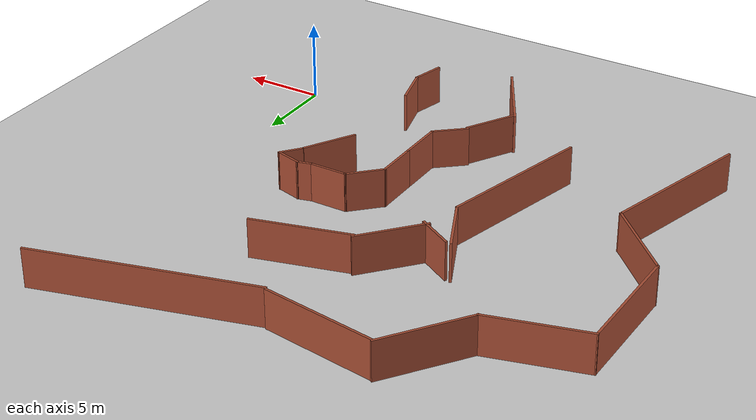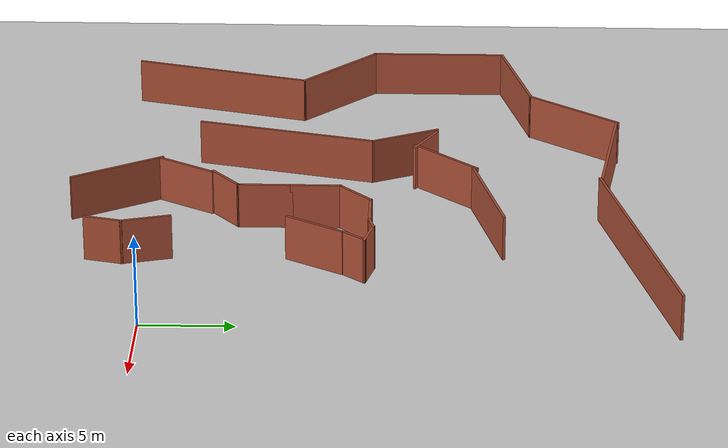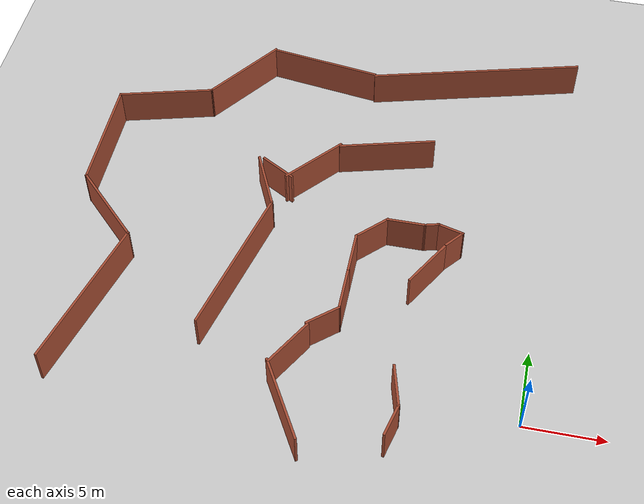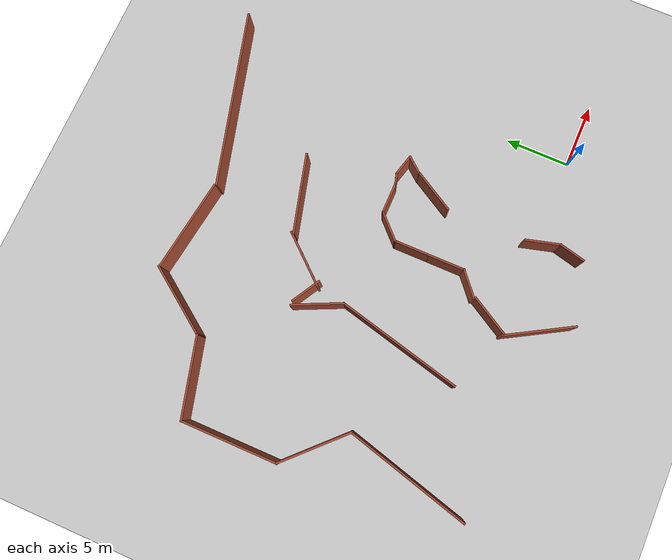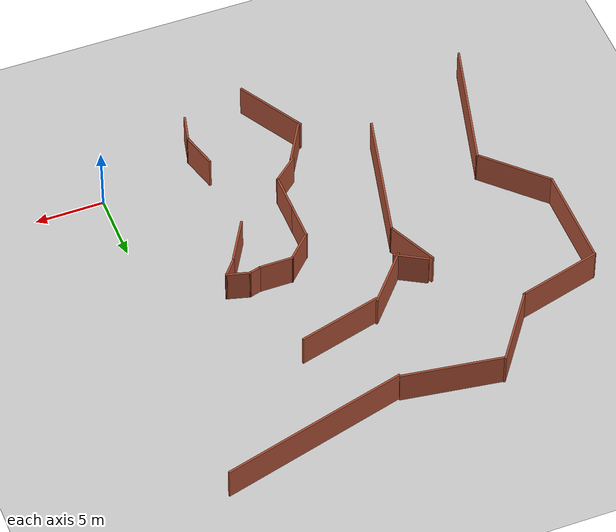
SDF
<sdf version="1.5">
 <world name="default">
  <model name="ground_plane">
   <static>1</static>
   <link name="link">
    <collision name="collision">
     <geometry><plane><normal>0 0 1</normal><size>100 100</size></plane></geometry>
     <surface><friction><ode><mu>100</mu><mu2>50</mu2></ode></friction></surface>
    </collision>
    <visual name="visual">
     <cast_shadows>0</cast_shadows>
     <geometry><plane><normal>0 0 1</normal><size>100 100</size></plane></geometry>
     <material>
      <script><uri>file://media/materials/scripts/gazebo.material</uri><name>Gazebo/Grey</name></script>
     </material>
    </visual>
   </link>
  </model>
  <model name="Untitled1111">
   <link name="Wall_112">
    <pose>-13.2085 17.0795 0 0 0 -2.87979</pose>
    <visual name="Wall_112_Visual">
     <pose>0 0 1.25 0 -0 0</pose>
     <geometry><box><size>6.25 0.15 2.5</size></box></geometry>
     <material>
      <script><uri>file://media/materials/scripts/gazebo.material</uri><name>Gazebo/Bricks</name></script>
      <ambient>1 1 1 1</ambient>
      <shader type="pixel"/>
     </material>
     <meta><layer>0</layer></meta>
    </visual>
    <collision name="Wall_112_Collision">
     <pose>0 0 1.25 0 -0 0</pose>
     <geometry><box><size>6.25 0.15 2.5</size></box></geometry>
     <surface>
      <friction>
       <ode><mu>1</mu><mu2>1</mu2><fdir1>0 0 0</fdir1><slip1>0</slip1><slip2>0</slip2></ode>
       <torsional>
        <coefficient>1</coefficient>
        <patch_radius>0</patch_radius>
        <surface_radius>0</surface_radius>
        <use_patch_radius>1</use_patch_radius>
        <ode><slip>0</slip></ode>
       </torsional>
      </friction>
      <bounce><restitution_coefficient>0</restitution_coefficient><threshold>1e+06</threshold></bounce>
      <contact>
       <collide_without_contact>0</collide_without_contact>
       <collide_without_contact_bitmask>1</collide_without_contact_bitmask>
       <collide_bitmask>1</collide_bitmask>
       <ode>
        <soft_cfm>0</soft_cfm>
        <soft_erp>0.2</soft_erp>
        <kp>1e+13</kp>
        <kd>1</kd>
        <max_vel>0.01</max_vel>
        <min_depth>0</min_depth>
       </ode>
       <bullet>
        <split_impulse>1</split_impulse>
        <split_impulse_penetration_threshold>-0.01</split_impulse_penetration_threshold>
        <soft_cfm>0</soft_cfm>
        <soft_erp>0.2</soft_erp>
        <kp>1e+13</kp>
        <kd>1</kd>
       </bullet>
      </contact>
     </surface>
    </collision>
   </link>
   <link name="Wall_113">
    <pose>-17.5992 14.7841 0 0 0 -2.28433</pose>
    <visual name="Wall_113_Visual">
     <pose>0 0 1.25 0 -0 0</pose>
     <geometry><box><size>4.56448 0.15 2.5</size></box></geometry>
     <material>
      <script><uri>file://media/materials/scripts/gazebo.material</uri><name>Gazebo/Bricks</name></script>
      <ambient>1 1 1 1</ambient>
      <shader type="pixel"/>
     </material>
     <meta><layer>0</layer></meta>
    </visual>
    <collision name="Wall_113_Collision">
     <pose>0 0 1.25 0 -0 0</pose>
     <geometry><box><size>4.56448 0.15 2.5</size></box></geometry>
     <surface>
      <friction>
       <ode><mu>1</mu><mu2>1</mu2><fdir1>0 0 0</fdir1><slip1>0</slip1><slip2>0</slip2></ode>
       <torsional>
        <coefficient>1</coefficient>
        <patch_radius>0</patch_radius>
        <surface_radius>0</surface_radius>
        <use_patch_radius>1</use_patch_radius>
        <ode><slip>0</slip></ode>
       </torsional>
      </friction>
      <bounce><restitution_coefficient>0</restitution_coefficient><threshold>1e+06</threshold></bounce>
      <contact>
       <collide_without_contact>0</collide_without_contact>
       <collide_without_contact_bitmask>1</collide_without_contact_bitmask>
       <collide_bitmask>1</collide_bitmask>
       <ode>
        <soft_cfm>0</soft_cfm>
        <soft_erp>0.2</soft_erp>
        <kp>1e+13</kp>
        <kd>1</kd>
        <max_vel>0.01</max_vel>
        <min_depth>0</min_depth>
       </ode>
       <bullet>
        <split_impulse>1</split_impulse>
        <split_impulse_penetration_threshold>-0.01</split_impulse_penetration_threshold>
        <soft_cfm>0</soft_cfm>
        <soft_erp>0.2</soft_erp>
        <kp>1e+13</kp>
        <kd>1</kd>
       </bullet>
      </contact>
     </surface>
    </collision>
   </link>
   <link name="Wall_114">
    <pose>-19.736 13.7028 0 0 -0 2.61799</pose>
    <visual name="Wall_114_Visual">
     <pose>0 0 1.25 0 -0 0</pose>
     <geometry><box><size>2.5 0.15 2.5</size></box></geometry>
     <material>
      <script><uri>file://media/materials/scripts/gazebo.material</uri><name>Gazebo/Bricks</name></script>
      <ambient>1 1 1 1</ambient>
      <shader type="pixel"/>
     </material>
     <meta><layer>0</layer></meta>
    </visual>
    <collision name="Wall_114_Collision">
     <pose>0 0 1.25 0 -0 0</pose>
     <geometry><box><size>2.5 0.15 2.5</size></box></geometry>
     <surface>
      <friction>
       <ode><mu>1</mu><mu2>1</mu2><fdir1>0 0 0</fdir1><slip1>0</slip1><slip2>0</slip2></ode>
       <torsional>
        <coefficient>1</coefficient>
        <patch_radius>0</patch_radius>
        <surface_radius>0</surface_radius>
        <use_patch_radius>1</use_patch_radius>
        <ode><slip>0</slip></ode>
       </torsional>
      </friction>
      <bounce><restitution_coefficient>0</restitution_coefficient><threshold>1e+06</threshold></bounce>
      <contact>
       <collide_without_contact>0</collide_without_contact>
       <collide_without_contact_bitmask>1</collide_without_contact_bitmask>
       <collide_bitmask>1</collide_bitmask>
       <ode>
        <soft_cfm>0</soft_cfm>
        <soft_erp>0.2</soft_erp>
        <kp>1e+13</kp>
        <kd>1</kd>
        <max_vel>0.01</max_vel>
        <min_depth>0</min_depth>
       </ode>
       <bullet>
        <split_impulse>1</split_impulse>
        <split_impulse_penetration_threshold>-0.01</split_impulse_penetration_threshold>
        <soft_cfm>0</soft_cfm>
        <soft_erp>0.2</soft_erp>
        <kp>1e+13</kp>
        <kd>1</kd>
       </bullet>
      </contact>
     </surface>
    </collision>
   </link>
   <link name="Wall_115">
    <pose>-20.2762 12.5425 0 0 0 -1.14016</pose>
    <visual name="Wall_115_Visual">
     <pose>0 0 1.25 0 -0 0</pose>
     <geometry><box><size>3.99669 0.15 2.5</size></box></geometry>
     <material>
      <script><uri>file://media/materials/scripts/gazebo.material</uri><name>Gazebo/Bricks</name></script>
      <ambient>1 1 1 1</ambient>
      <shader type="pixel"/>
     </material>
     <meta><layer>0</layer></meta>
    </visual>
    <collision name="Wall_115_Collision">
     <pose>0 0 1.25 0 -0 0</pose>
     <geometry><box><size>3.99669 0.15 2.5</size></box></geometry>
     <surface>
      <friction>
       <ode><mu>1</mu><mu2>1</mu2><fdir1>0 0 0</fdir1><slip1>0</slip1><slip2>0</slip2></ode>
       <torsional>
        <coefficient>1</coefficient>
        <patch_radius>0</patch_radius>
        <surface_radius>0</surface_radius>
        <use_patch_radius>1</use_patch_radius>
        <ode><slip>0</slip></ode>
       </torsional>
      </friction>
      <bounce><restitution_coefficient>0</restitution_coefficient><threshold>1e+06</threshold></bounce>
      <contact>
       <collide_without_contact>0</collide_without_contact>
       <collide_without_contact_bitmask>1</collide_without_contact_bitmask>
       <collide_bitmask>1</collide_bitmask>
       <ode>
        <soft_cfm>0</soft_cfm>
        <soft_erp>0.2</soft_erp>
        <kp>1e+13</kp>
        <kd>1</kd>
        <max_vel>0.01</max_vel>
        <min_depth>0</min_depth>
       </ode>
       <bullet>
        <split_impulse>1</split_impulse>
        <split_impulse_penetration_threshold>-0.01</split_impulse_penetration_threshold>
        <soft_cfm>0</soft_cfm>
        <soft_erp>0.2</soft_erp>
        <kp>1e+13</kp>
        <kd>1</kd>
       </bullet>
      </contact>
     </surface>
    </collision>
   </link>
   <link name="Wall_116">
    <pose>-20.6372 6.01657 0 0 0 -1.80973</pose>
    <visual name="Wall_116_Visual">
     <pose>0 0 1.25 0 -0 0</pose>
     <geometry><box><size>9.98588 0.15 2.5</size></box></geometry>
     <material>
      <script><uri>file://media/materials/scripts/gazebo.material</uri><name>Gazebo/Bricks</name></script>
      <ambient>1 1 1 1</ambient>
      <shader type="pixel"/>
     </material>
     <meta><layer>0</layer></meta>
    </visual>
    <collision name="Wall_116_Collision">
     <pose>0 0 1.25 0 -0 0</pose>
     <geometry><box><size>9.98588 0.15 2.5</size></box></geometry>
     <surface>
      <friction>
       <ode><mu>1</mu><mu2>1</mu2><fdir1>0 0 0</fdir1><slip1>0</slip1><slip2>0</slip2></ode>
       <torsional>
        <coefficient>1</coefficient>
        <patch_radius>0</patch_radius>
        <surface_radius>0</surface_radius>
        <use_patch_radius>1</use_patch_radius>
        <ode><slip>0</slip></ode>
       </torsional>
      </friction>
      <bounce><restitution_coefficient>0</restitution_coefficient><threshold>1e+06</threshold></bounce>
      <contact>
       <collide_without_contact>0</collide_without_contact>
       <collide_without_contact_bitmask>1</collide_without_contact_bitmask>
       <collide_bitmask>1</collide_bitmask>
       <ode>
        <soft_cfm>0</soft_cfm>
        <soft_erp>0.2</soft_erp>
        <kp>1e+13</kp>
        <kd>1</kd>
        <max_vel>0.01</max_vel>
        <min_depth>0</min_depth>
       </ode>
       <bullet>
        <split_impulse>1</split_impulse>
        <split_impulse_penetration_threshold>-0.01</split_impulse_penetration_threshold>
        <soft_cfm>0</soft_cfm>
        <soft_erp>0.2</soft_erp>
        <kp>1e+13</kp>
        <kd>1</kd>
       </bullet>
      </contact>
     </surface>
    </collision>
   </link>
   <link name="Wall_148">
    <pose>-18.65 23.7042 0 0 -0 2.99721</pose>
    <visual name="Wall_148_Visual">
     <pose>0 0 1.25 0 -0 0</pose>
     <geometry><box><size>7.25 0.15 2.5</size></box></geometry>
     <material>
      <script><uri>file://media/materials/scripts/gazebo.material</uri><name>Gazebo/Bricks</name></script>
      <ambient>1 1 1 1</ambient>
      <shader type="pixel"/>
     </material>
     <meta><layer>0</layer></meta>
    </visual>
    <collision name="Wall_148_Collision">
     <pose>0 0 1.25 0 -0 0</pose>
     <geometry><box><size>7.25 0.15 2.5</size></box></geometry>
     <surface>
      <friction>
       <ode><mu>1</mu><mu2>1</mu2><fdir1>0 0 0</fdir1><slip1>0</slip1><slip2>0</slip2></ode>
       <torsional>
        <coefficient>1</coefficient>
        <patch_radius>0</patch_radius>
        <surface_radius>0</surface_radius>
        <use_patch_radius>1</use_patch_radius>
        <ode><slip>0</slip></ode>
       </torsional>
      </friction>
      <bounce><restitution_coefficient>0</restitution_coefficient><threshold>1e+06</threshold></bounce>
      <contact>
       <collide_without_contact>0</collide_without_contact>
       <collide_without_contact_bitmask>1</collide_without_contact_bitmask>
       <collide_bitmask>1</collide_bitmask>
       <ode>
        <soft_cfm>0</soft_cfm>
        <soft_erp>0.2</soft_erp>
        <kp>1e+13</kp>
        <kd>1</kd>
        <max_vel>0.01</max_vel>
        <min_depth>0</min_depth>
       </ode>
       <bullet>
        <split_impulse>1</split_impulse>
        <split_impulse_penetration_threshold>-0.01</split_impulse_penetration_threshold>
        <soft_cfm>0</soft_cfm>
        <soft_erp>0.2</soft_erp>
        <kp>1e+13</kp>
        <kd>1</kd>
       </bullet>
      </contact>
     </surface>
    </collision>
   </link>
   <link name="Wall_149">
    <pose>-23.9657 21.9231 0 0 0 -2.19204</pose>
    <visual name="Wall_149_Visual">
     <pose>0 0 1.25 0 -0 0</pose>
     <geometry><box><size>5.96166 0.15 2.5</size></box></geometry>
     <material>
      <script><uri>file://media/materials/scripts/gazebo.material</uri><name>Gazebo/Bricks</name></script>
      <ambient>1 1 1 1</ambient>
      <shader type="pixel"/>
     </material>
     <meta><layer>0</layer></meta>
    </visual>
    <collision name="Wall_149_Collision">
     <pose>0 0 1.25 0 -0 0</pose>
     <geometry><box><size>5.96166 0.15 2.5</size></box></geometry>
     <surface>
      <friction>
       <ode><mu>1</mu><mu2>1</mu2><fdir1>0 0 0</fdir1><slip1>0</slip1><slip2>0</slip2></ode>
       <torsional>
        <coefficient>1</coefficient>
        <patch_radius>0</patch_radius>
        <surface_radius>0</surface_radius>
        <use_patch_radius>1</use_patch_radius>
        <ode><slip>0</slip></ode>
       </torsional>
      </friction>
      <bounce><restitution_coefficient>0</restitution_coefficient><threshold>1e+06</threshold></bounce>
      <contact>
       <collide_without_contact>0</collide_without_contact>
       <collide_without_contact_bitmask>1</collide_without_contact_bitmask>
       <collide_bitmask>1</collide_bitmask>
       <ode>
        <soft_cfm>0</soft_cfm>
        <soft_erp>0.2</soft_erp>
        <kp>1e+13</kp>
        <kd>1</kd>
        <max_vel>0.01</max_vel>
        <min_depth>0</min_depth>
       </ode>
       <bullet>
        <split_impulse>1</split_impulse>
        <split_impulse_penetration_threshold>-0.01</split_impulse_penetration_threshold>
        <soft_cfm>0</soft_cfm>
        <soft_erp>0.2</soft_erp>
        <kp>1e+13</kp>
        <kd>1</kd>
       </bullet>
      </contact>
     </surface>
    </collision>
   </link>
   <link name="Wall_150">
    <pose>-28.6031 18.7708 0 0 0 -2.87979</pose>
    <visual name="Wall_150_Visual">
     <pose>0 0 1.25 0 -0 0</pose>
     <geometry><box><size>6.25 0.15 2.5</size></box></geometry>
     <material>
      <script><uri>file://media/materials/scripts/gazebo.material</uri><name>Gazebo/Bricks</name></script>
      <ambient>1 1 1 1</ambient>
      <shader type="pixel"/>
     </material>
     <meta><layer>0</layer></meta>
    </visual>
    <collision name="Wall_150_Collision">
     <pose>0 0 1.25 0 -0 0</pose>
     <geometry><box><size>6.25 0.15 2.5</size></box></geometry>
     <surface>
      <friction>
       <ode><mu>1</mu><mu2>1</mu2><fdir1>0 0 0</fdir1><slip1>0</slip1><slip2>0</slip2></ode>
       <torsional>
        <coefficient>1</coefficient>
        <patch_radius>0</patch_radius>
        <surface_radius>0</surface_radius>
        <use_patch_radius>1</use_patch_radius>
        <ode><slip>0</slip></ode>
       </torsional>
      </friction>
      <bounce><restitution_coefficient>0</restitution_coefficient><threshold>1e+06</threshold></bounce>
      <contact>
       <collide_without_contact>0</collide_without_contact>
       <collide_without_contact_bitmask>1</collide_without_contact_bitmask>
       <collide_bitmask>1</collide_bitmask>
       <ode>
        <soft_cfm>0</soft_cfm>
        <soft_erp>0.2</soft_erp>
        <kp>1e+13</kp>
        <kd>1</kd>
        <max_vel>0.01</max_vel>
        <min_depth>0</min_depth>
       </ode>
       <bullet>
        <split_impulse>1</split_impulse>
        <split_impulse_penetration_threshold>-0.01</split_impulse_penetration_threshold>
        <soft_cfm>0</soft_cfm>
        <soft_erp>0.2</soft_erp>
        <kp>1e+13</kp>
        <kd>1</kd>
       </bullet>
      </contact>
     </surface>
    </collision>
   </link>
   <link name="Wall_151">
    <pose>-31.5491 14.3064 0 0 0 -1.5708</pose>
    <visual name="Wall_151_Visual">
     <pose>0 0 1.25 0 -0 0</pose>
     <geometry><box><size>7.5 0.15 2.5</size></box></geometry>
     <material>
      <script><uri>file://media/materials/scripts/gazebo.material</uri><name>Gazebo/Bricks</name></script>
      <ambient>1 1 1 1</ambient>
      <shader type="pixel"/>
     </material>
     <meta><layer>0</layer></meta>
    </visual>
    <collision name="Wall_151_Collision">
     <pose>0 0 1.25 0 -0 0</pose>
     <geometry><box><size>7.5 0.15 2.5</size></box></geometry>
     <surface>
      <friction>
       <ode><mu>1</mu><mu2>1</mu2><fdir1>0 0 0</fdir1><slip1>0</slip1><slip2>0</slip2></ode>
       <torsional>
        <coefficient>1</coefficient>
        <patch_radius>0</patch_radius>
        <surface_radius>0</surface_radius>
        <use_patch_radius>1</use_patch_radius>
        <ode><slip>0</slip></ode>
       </torsional>
      </friction>
      <bounce><restitution_coefficient>0</restitution_coefficient><threshold>1e+06</threshold></bounce>
      <contact>
       <collide_without_contact>0</collide_without_contact>
       <collide_without_contact_bitmask>1</collide_without_contact_bitmask>
       <collide_bitmask>1</collide_bitmask>
       <ode>
        <soft_cfm>0</soft_cfm>
        <soft_erp>0.2</soft_erp>
        <kp>1e+13</kp>
        <kd>1</kd>
        <max_vel>0.01</max_vel>
        <min_depth>0</min_depth>
       </ode>
       <bullet>
        <split_impulse>1</split_impulse>
        <split_impulse_penetration_threshold>-0.01</split_impulse_penetration_threshold>
        <soft_cfm>0</soft_cfm>
        <soft_erp>0.2</soft_erp>
        <kp>1e+13</kp>
        <kd>1</kd>
       </bullet>
      </contact>
     </surface>
    </collision>
   </link>
   <link name="Wall_152">
    <pose>-29.5693 8.65152 0 0 0 -0.785398</pose>
    <visual name="Wall_152_Visual">
     <pose>0 0 1.25 0 -0 0</pose>
     <geometry><box><size>5.75 0.15 2.5</size></box></geometry>
     <material>
      <script><uri>file://media/materials/scripts/gazebo.material</uri><name>Gazebo/Bricks</name></script>
      <ambient>1 1 1 1</ambient>
      <shader type="pixel"/>
     </material>
     <meta><layer>0</layer></meta>
    </visual>
    <collision name="Wall_152_Collision">
     <pose>0 0 1.25 0 -0 0</pose>
     <geometry><box><size>5.75 0.15 2.5</size></box></geometry>
     <surface>
      <friction>
       <ode><mu>1</mu><mu2>1</mu2><fdir1>0 0 0</fdir1><slip1>0</slip1><slip2>0</slip2></ode>
       <torsional>
        <coefficient>1</coefficient>
        <patch_radius>0</patch_radius>
        <surface_radius>0</surface_radius>
        <use_patch_radius>1</use_patch_radius>
        <ode><slip>0</slip></ode>
       </torsional>
      </friction>
      <bounce><restitution_coefficient>0</restitution_coefficient><threshold>1e+06</threshold></bounce>
      <contact>
       <collide_without_contact>0</collide_without_contact>
       <collide_without_contact_bitmask>1</collide_without_contact_bitmask>
       <collide_bitmask>1</collide_bitmask>
       <ode>
        <soft_cfm>0</soft_cfm>
        <soft_erp>0.2</soft_erp>
        <kp>1e+13</kp>
        <kd>1</kd>
        <max_vel>0.01</max_vel>
        <min_depth>0</min_depth>
       </ode>
       <bullet>
        <split_impulse>1</split_impulse>
        <split_impulse_penetration_threshold>-0.01</split_impulse_penetration_threshold>
        <soft_cfm>0</soft_cfm>
        <soft_erp>0.2</soft_erp>
        <kp>1e+13</kp>
        <kd>1</kd>
       </bullet>
      </contact>
     </surface>
    </collision>
   </link>
   <link name="Wall_153">
    <pose>-28.864 1.91444 0 0 0 -1.8326</pose>
    <visual name="Wall_153_Visual">
     <pose>0 0 1.25 0 -0 0</pose>
     <geometry><box><size>10 0.15 2.5</size></box></geometry>
     <material>
      <script><uri>file://media/materials/scripts/gazebo.material</uri><name>Gazebo/Bricks</name></script>
      <ambient>1 1 1 1</ambient>
      <shader type="pixel"/>
     </material>
     <meta><layer>0</layer></meta>
    </visual>
    <collision name="Wall_153_Collision">
     <pose>0 0 1.25 0 -0 0</pose>
     <geometry><box><size>10 0.15 2.5</size></box></geometry>
     <surface>
      <friction>
       <ode><mu>1</mu><mu2>1</mu2><fdir1>0 0 0</fdir1><slip1>0</slip1><slip2>0</slip2></ode>
       <torsional>
        <coefficient>1</coefficient>
        <patch_radius>0</patch_radius>
        <surface_radius>0</surface_radius>
        <use_patch_radius>1</use_patch_radius>
        <ode><slip>0</slip></ode>
       </torsional>
      </friction>
      <bounce><restitution_coefficient>0</restitution_coefficient><threshold>1e+06</threshold></bounce>
      <contact>
       <collide_without_contact>0</collide_without_contact>
       <collide_without_contact_bitmask>1</collide_without_contact_bitmask>
       <collide_bitmask>1</collide_bitmask>
       <ode>
        <soft_cfm>0</soft_cfm>
        <soft_erp>0.2</soft_erp>
        <kp>1e+13</kp>
        <kd>1</kd>
        <max_vel>0.01</max_vel>
        <min_depth>0</min_depth>
       </ode>
       <bullet>
        <split_impulse>1</split_impulse>
        <split_impulse_penetration_threshold>-0.01</split_impulse_penetration_threshold>
        <soft_cfm>0</soft_cfm>
        <soft_erp>0.2</soft_erp>
        <kp>1e+13</kp>
        <kd>1</kd>
       </bullet>
      </contact>
     </surface>
    </collision>
   </link>
   <link name="Wall_161">
    <pose>-8.34749 24.8776 0 0 -0 0.261799</pose>
    <visual name="Wall_161_Visual">
     <pose>0 0 1.25 0 -0 0</pose>
     <geometry><box><size>14 0.15 2.5</size></box></geometry>
     <material>
      <script><uri>file://media/materials/scripts/gazebo.material</uri><name>Gazebo/Bricks</name></script>
      <ambient>1 1 1 1</ambient>
      <shader type="pixel"/>
     </material>
     <meta><layer>0</layer></meta>
    </visual>
    <collision name="Wall_161_Collision">
     <pose>0 0 1.25 0 -0 0</pose>
     <geometry><box><size>14 0.15 2.5</size></box></geometry>
     <surface>
      <friction>
       <ode><mu>1</mu><mu2>1</mu2><fdir1>0 0 0</fdir1><slip1>0</slip1><slip2>0</slip2></ode>
       <torsional>
        <coefficient>1</coefficient>
        <patch_radius>0</patch_radius>
        <surface_radius>0</surface_radius>
        <use_patch_radius>1</use_patch_radius>
        <ode><slip>0</slip></ode>
       </torsional>
      </friction>
      <bounce><restitution_coefficient>0</restitution_coefficient><threshold>1e+06</threshold></bounce>
      <contact>
       <collide_without_contact>0</collide_without_contact>
       <collide_without_contact_bitmask>1</collide_without_contact_bitmask>
       <collide_bitmask>1</collide_bitmask>
       <ode>
        <soft_cfm>0</soft_cfm>
        <soft_erp>0.2</soft_erp>
        <kp>1e+13</kp>
        <kd>1</kd>
        <max_vel>0.01</max_vel>
        <min_depth>0</min_depth>
       </ode>
       <bullet>
        <split_impulse>1</split_impulse>
        <split_impulse_penetration_threshold>-0.01</split_impulse_penetration_threshold>
        <soft_cfm>0</soft_cfm>
        <soft_erp>0.2</soft_erp>
        <kp>1e+13</kp>
        <kd>1</kd>
       </bullet>
      </contact>
     </surface>
    </collision>
   </link>
   <link name="Wall_71">
    <pose>-9.50613 -3.05583 0 0 -0 1.33608</pose>
    <visual name="Wall_71_Visual">
     <pose>0 0 1.25 0 -0 0</pose>
     <geometry><box><size>2.13914 0.15 2.5</size></box></geometry>
     <material>
      <script><uri>file://media/materials/scripts/gazebo.material</uri><name>Gazebo/Bricks</name></script>
      <ambient>1 1 1 1</ambient>
      <shader type="pixel"/>
     </material>
     <meta><layer>0</layer></meta>
    </visual>
    <collision name="Wall_71_Collision">
     <pose>0 0 1.25 0 -0 0</pose>
     <geometry><box><size>2.13914 0.15 2.5</size></box></geometry>
     <surface>
      <friction>
       <ode><mu>1</mu><mu2>1</mu2><fdir1>0 0 0</fdir1><slip1>0</slip1><slip2>0</slip2></ode>
       <torsional>
        <coefficient>1</coefficient>
        <patch_radius>0</patch_radius>
        <surface_radius>0</surface_radius>
        <use_patch_radius>1</use_patch_radius>
        <ode><slip>0</slip></ode>
       </torsional>
      </friction>
      <bounce><restitution_coefficient>0</restitution_coefficient><threshold>1e+06</threshold></bounce>
      <contact>
       <collide_without_contact>0</collide_without_contact>
       <collide_without_contact_bitmask>1</collide_without_contact_bitmask>
       <collide_bitmask>1</collide_bitmask>
       <ode>
        <soft_cfm>0</soft_cfm>
        <soft_erp>0.2</soft_erp>
        <kp>1e+13</kp>
        <kd>1</kd>
        <max_vel>0.01</max_vel>
        <min_depth>0</min_depth>
       </ode>
       <bullet>
        <split_impulse>1</split_impulse>
        <split_impulse_penetration_threshold>-0.01</split_impulse_penetration_threshold>
        <soft_cfm>0</soft_cfm>
        <soft_erp>0.2</soft_erp>
        <kp>1e+13</kp>
        <kd>1</kd>
       </bullet>
      </contact>
     </surface>
    </collision>
   </link>
   <link name="Wall_72">
    <pose>-9.61129 -0.832823 0 0 -0 1.8326</pose>
    <visual name="Wall_72_Visual">
     <pose>0 0 1.25 0 -0 0</pose>
     <geometry><box><size>2.75 0.15 2.5</size></box></geometry>
     <material>
      <script><uri>file://media/materials/scripts/gazebo.material</uri><name>Gazebo/Bricks</name></script>
      <ambient>1 1 1 1</ambient>
      <shader type="pixel"/>
     </material>
     <meta><layer>0</layer></meta>
    </visual>
    <collision name="Wall_72_Collision">
     <pose>0 0 1.25 0 -0 0</pose>
     <geometry><box><size>2.75 0.15 2.5</size></box></geometry>
     <surface>
      <friction>
       <ode><mu>1</mu><mu2>1</mu2><fdir1>0 0 0</fdir1><slip1>0</slip1><slip2>0</slip2></ode>
       <torsional>
        <coefficient>1</coefficient>
        <patch_radius>0</patch_radius>
        <surface_radius>0</surface_radius>
        <use_patch_radius>1</use_patch_radius>
        <ode><slip>0</slip></ode>
       </torsional>
      </friction>
      <bounce><restitution_coefficient>0</restitution_coefficient><threshold>1e+06</threshold></bounce>
      <contact>
       <collide_without_contact>0</collide_without_contact>
       <collide_without_contact_bitmask>1</collide_without_contact_bitmask>
       <collide_bitmask>1</collide_bitmask>
       <ode>
        <soft_cfm>0</soft_cfm>
        <soft_erp>0.2</soft_erp>
        <kp>1e+13</kp>
        <kd>1</kd>
        <max_vel>0.01</max_vel>
        <min_depth>0</min_depth>
       </ode>
       <bullet>
        <split_impulse>1</split_impulse>
        <split_impulse_penetration_threshold>-0.01</split_impulse_penetration_threshold>
        <soft_cfm>0</soft_cfm>
        <soft_erp>0.2</soft_erp>
        <kp>1e+13</kp>
        <kd>1</kd>
       </bullet>
      </contact>
     </surface>
    </collision>
   </link>
   <link name="Wall_74">
    <pose>-9.19116 7.99625 0 0 -0 1.0472</pose>
    <visual name="Wall_74_Visual">
     <pose>0 0 1.25 0 -0 0</pose>
     <geometry><box><size>3.5 0.15 2.5</size></box></geometry>
     <material>
      <script><uri>file://media/materials/scripts/gazebo.material</uri><name>Gazebo/Bricks</name></script>
      <ambient>1 1 1 1</ambient>
      <shader type="pixel"/>
     </material>
     <meta><layer>0</layer></meta>
    </visual>
    <collision name="Wall_74_Collision">
     <pose>0 0 1.25 0 -0 0</pose>
     <geometry><box><size>3.5 0.15 2.5</size></box></geometry>
     <surface>
      <friction>
       <ode><mu>1</mu><mu2>1</mu2><fdir1>0 0 0</fdir1><slip1>0</slip1><slip2>0</slip2></ode>
       <torsional>
        <coefficient>1</coefficient>
        <patch_radius>0</patch_radius>
        <surface_radius>0</surface_radius>
        <use_patch_radius>1</use_patch_radius>
        <ode><slip>0</slip></ode>
       </torsional>
      </friction>
      <bounce><restitution_coefficient>0</restitution_coefficient><threshold>1e+06</threshold></bounce>
      <contact>
       <collide_without_contact>0</collide_without_contact>
       <collide_without_contact_bitmask>1</collide_without_contact_bitmask>
       <collide_bitmask>1</collide_bitmask>
       <ode>
        <soft_cfm>0</soft_cfm>
        <soft_erp>0.2</soft_erp>
        <kp>1e+13</kp>
        <kd>1</kd>
        <max_vel>0.01</max_vel>
        <min_depth>0</min_depth>
       </ode>
       <bullet>
        <split_impulse>1</split_impulse>
        <split_impulse_penetration_threshold>-0.01</split_impulse_penetration_threshold>
        <soft_cfm>0</soft_cfm>
        <soft_erp>0.2</soft_erp>
        <kp>1e+13</kp>
        <kd>1</kd>
       </bullet>
      </contact>
     </surface>
    </collision>
   </link>
   <link name="Wall_75">
    <pose>-7.83923 10.1343 0 0 -0 0.881131</pose>
    <visual name="Wall_75_Visual">
     <pose>0 0 1.25 0 -0 0</pose>
     <geometry><box><size>1.51268 0.15 2.5</size></box></geometry>
     <material>
      <script><uri>file://media/materials/scripts/gazebo.material</uri><name>Gazebo/Bricks</name></script>
      <ambient>1 1 1 1</ambient>
      <shader type="pixel"/>
     </material>
     <meta><layer>0</layer></meta>
    </visual>
    <collision name="Wall_75_Collision">
     <pose>0 0 1.25 0 -0 0</pose>
     <geometry><box><size>1.51268 0.15 2.5</size></box></geometry>
     <surface>
      <friction>
       <ode><mu>1</mu><mu2>1</mu2><fdir1>0 0 0</fdir1><slip1>0</slip1><slip2>0</slip2></ode>
       <torsional>
        <coefficient>1</coefficient>
        <patch_radius>0</patch_radius>
        <surface_radius>0</surface_radius>
        <use_patch_radius>1</use_patch_radius>
        <ode><slip>0</slip></ode>
       </torsional>
      </friction>
      <bounce><restitution_coefficient>0</restitution_coefficient><threshold>1e+06</threshold></bounce>
      <contact>
       <collide_without_contact>0</collide_without_contact>
       <collide_without_contact_bitmask>1</collide_without_contact_bitmask>
       <collide_bitmask>1</collide_bitmask>
       <ode>
        <soft_cfm>0</soft_cfm>
        <soft_erp>0.2</soft_erp>
        <kp>1e+13</kp>
        <kd>1</kd>
        <max_vel>0.01</max_vel>
        <min_depth>0</min_depth>
       </ode>
       <bullet>
        <split_impulse>1</split_impulse>
        <split_impulse_penetration_threshold>-0.01</split_impulse_penetration_threshold>
        <soft_cfm>0</soft_cfm>
        <soft_erp>0.2</soft_erp>
        <kp>1e+13</kp>
        <kd>1</kd>
       </bullet>
      </contact>
     </surface>
    </collision>
   </link>
   <link name="Wall_76">
    <pose>-8.17845 10.867 0 0 -0 2.87979</pose>
    <visual name="Wall_76_Visual">
     <pose>0 0 1.25 0 -0 0</pose>
     <geometry><box><size>1.75 0.15 2.5</size></box></geometry>
     <material>
      <script><uri>file://media/materials/scripts/gazebo.material</uri><name>Gazebo/Bricks</name></script>
      <ambient>1 1 1 1</ambient>
      <shader type="pixel"/>
     </material>
     <meta><layer>0</layer></meta>
    </visual>
    <collision name="Wall_76_Collision">
     <pose>0 0 1.25 0 -0 0</pose>
     <geometry><box><size>1.75 0.15 2.5</size></box></geometry>
     <surface>
      <friction>
       <ode><mu>1</mu><mu2>1</mu2><fdir1>0 0 0</fdir1><slip1>0</slip1><slip2>0</slip2></ode>
       <torsional>
        <coefficient>1</coefficient>
        <patch_radius>0</patch_radius>
        <surface_radius>0</surface_radius>
        <use_patch_radius>1</use_patch_radius>
        <ode><slip>0</slip></ode>
       </torsional>
      </friction>
      <bounce><restitution_coefficient>0</restitution_coefficient><threshold>1e+06</threshold></bounce>
      <contact>
       <collide_without_contact>0</collide_without_contact>
       <collide_without_contact_bitmask>1</collide_without_contact_bitmask>
       <collide_bitmask>1</collide_bitmask>
       <ode>
        <soft_cfm>0</soft_cfm>
        <soft_erp>0.2</soft_erp>
        <kp>1e+13</kp>
        <kd>1</kd>
        <max_vel>0.01</max_vel>
        <min_depth>0</min_depth>
       </ode>
       <bullet>
        <split_impulse>1</split_impulse>
        <split_impulse_penetration_threshold>-0.01</split_impulse_penetration_threshold>
        <soft_cfm>0</soft_cfm>
        <soft_erp>0.2</soft_erp>
        <kp>1e+13</kp>
        <kd>1</kd>
       </bullet>
      </contact>
     </surface>
    </collision>
   </link>
   <link name="Wall_77">
    <pose>-9.36171 10.964 0 0 0 -2.87979</pose>
    <visual name="Wall_77_Visual">
     <pose>0 0 1.25 0 -0 0</pose>
     <geometry><box><size>1 0.15 2.5</size></box></geometry>
     <material>
      <script><uri>file://media/materials/scripts/gazebo.material</uri><name>Gazebo/Bricks</name></script>
      <ambient>1 1 1 1</ambient>
      <shader type="pixel"/>
     </material>
     <meta><layer>0</layer></meta>
    </visual>
    <collision name="Wall_77_Collision">
     <pose>0 0 1.25 0 -0 0</pose>
     <geometry><box><size>1 0.15 2.5</size></box></geometry>
     <surface>
      <friction>
       <ode><mu>1</mu><mu2>1</mu2><fdir1>0 0 0</fdir1><slip1>0</slip1><slip2>0</slip2></ode>
       <torsional>
        <coefficient>1</coefficient>
        <patch_radius>0</patch_radius>
        <surface_radius>0</surface_radius>
        <use_patch_radius>1</use_patch_radius>
        <ode><slip>0</slip></ode>
       </torsional>
      </friction>
      <bounce><restitution_coefficient>0</restitution_coefficient><threshold>1e+06</threshold></bounce>
      <contact>
       <collide_without_contact>0</collide_without_contact>
       <collide_without_contact_bitmask>1</collide_without_contact_bitmask>
       <collide_bitmask>1</collide_bitmask>
       <ode>
        <soft_cfm>0</soft_cfm>
        <soft_erp>0.2</soft_erp>
        <kp>1e+13</kp>
        <kd>1</kd>
        <max_vel>0.01</max_vel>
        <min_depth>0</min_depth>
       </ode>
       <bullet>
        <split_impulse>1</split_impulse>
        <split_impulse_penetration_threshold>-0.01</split_impulse_penetration_threshold>
        <soft_cfm>0</soft_cfm>
        <soft_erp>0.2</soft_erp>
        <kp>1e+13</kp>
        <kd>1</kd>
       </bullet>
      </contact>
     </surface>
    </collision>
   </link>
   <link name="Wall_78">
    <pose>-10.9472 10.854 0 0 -0 3.14159</pose>
    <visual name="Wall_78_Visual">
     <pose>0 0 1.25 0 -0 0</pose>
     <geometry><box><size>2.5 0.15 2.5</size></box></geometry>
     <material>
      <script><uri>file://media/materials/scripts/gazebo.material</uri><name>Gazebo/Bricks</name></script>
      <ambient>1 1 1 1</ambient>
      <shader type="pixel"/>
     </material>
     <meta><layer>0</layer></meta>
    </visual>
    <collision name="Wall_78_Collision">
     <pose>0 0 1.25 0 -0 0</pose>
     <geometry><box><size>2.5 0.15 2.5</size></box></geometry>
     <surface>
      <friction>
       <ode><mu>1</mu><mu2>1</mu2><fdir1>0 0 0</fdir1><slip1>0</slip1><slip2>0</slip2></ode>
       <torsional>
        <coefficient>1</coefficient>
        <patch_radius>0</patch_radius>
        <surface_radius>0</surface_radius>
        <use_patch_radius>1</use_patch_radius>
        <ode><slip>0</slip></ode>
       </torsional>
      </friction>
      <bounce><restitution_coefficient>0</restitution_coefficient><threshold>1e+06</threshold></bounce>
      <contact>
       <collide_without_contact>0</collide_without_contact>
       <collide_without_contact_bitmask>1</collide_without_contact_bitmask>
       <collide_bitmask>1</collide_bitmask>
       <ode>
        <soft_cfm>0</soft_cfm>
        <soft_erp>0.2</soft_erp>
        <kp>1e+13</kp>
        <kd>1</kd>
        <max_vel>0.01</max_vel>
        <min_depth>0</min_depth>
       </ode>
       <bullet>
        <split_impulse>1</split_impulse>
        <split_impulse_penetration_threshold>-0.01</split_impulse_penetration_threshold>
        <soft_cfm>0</soft_cfm>
        <soft_erp>0.2</soft_erp>
        <kp>1e+13</kp>
        <kd>1</kd>
       </bullet>
      </contact>
     </surface>
    </collision>
   </link>
   <link name="Wall_79">
    <pose>-12.9531 10.0232 0 0 0 -2.35619</pose>
    <visual name="Wall_79_Visual">
     <pose>0 0 1.25 0 -0 0</pose>
     <geometry><box><size>2.5 0.15 2.5</size></box></geometry>
     <material>
      <script><uri>file://media/materials/scripts/gazebo.material</uri><name>Gazebo/Bricks</name></script>
      <ambient>1 1 1 1</ambient>
      <shader type="pixel"/>
     </material>
     <meta><layer>0</layer></meta>
    </visual>
    <collision name="Wall_79_Collision">
     <pose>0 0 1.25 0 -0 0</pose>
     <geometry><box><size>2.5 0.15 2.5</size></box></geometry>
     <surface>
      <friction>
       <ode><mu>1</mu><mu2>1</mu2><fdir1>0 0 0</fdir1><slip1>0</slip1><slip2>0</slip2></ode>
       <torsional>
        <coefficient>1</coefficient>
        <patch_radius>0</patch_radius>
        <surface_radius>0</surface_radius>
        <use_patch_radius>1</use_patch_radius>
        <ode><slip>0</slip></ode>
       </torsional>
      </friction>
      <bounce><restitution_coefficient>0</restitution_coefficient><threshold>1e+06</threshold></bounce>
      <contact>
       <collide_without_contact>0</collide_without_contact>
       <collide_without_contact_bitmask>1</collide_without_contact_bitmask>
       <collide_bitmask>1</collide_bitmask>
       <ode>
        <soft_cfm>0</soft_cfm>
        <soft_erp>0.2</soft_erp>
        <kp>1e+13</kp>
        <kd>1</kd>
        <max_vel>0.01</max_vel>
        <min_depth>0</min_depth>
       </ode>
       <bullet>
        <split_impulse>1</split_impulse>
        <split_impulse_penetration_threshold>-0.01</split_impulse_penetration_threshold>
        <soft_cfm>0</soft_cfm>
        <soft_erp>0.2</soft_erp>
        <kp>1e+13</kp>
        <kd>1</kd>
       </bullet>
      </contact>
     </surface>
    </collision>
   </link>
   <link name="Wall_80">
    <pose>-13.7839 7.89233 0 0 0 -1.5708</pose>
    <visual name="Wall_80_Visual">
     <pose>0 0 1.25 0 -0 0</pose>
     <geometry><box><size>2.75 0.15 2.5</size></box></geometry>
     <material>
      <script><uri>file://media/materials/scripts/gazebo.material</uri><name>Gazebo/Bricks</name></script>
      <ambient>1 1 1 1</ambient>
      <shader type="pixel"/>
     </material>
     <meta><layer>0</layer></meta>
    </visual>
    <collision name="Wall_80_Collision">
     <pose>0 0 1.25 0 -0 0</pose>
     <geometry><box><size>2.75 0.15 2.5</size></box></geometry>
     <surface>
      <friction>
       <ode><mu>1</mu><mu2>1</mu2><fdir1>0 0 0</fdir1><slip1>0</slip1><slip2>0</slip2></ode>
       <torsional>
        <coefficient>1</coefficient>
        <patch_radius>0</patch_radius>
        <surface_radius>0</surface_radius>
        <use_patch_radius>1</use_patch_radius>
        <ode><slip>0</slip></ode>
       </torsional>
      </friction>
      <bounce><restitution_coefficient>0</restitution_coefficient><threshold>1e+06</threshold></bounce>
      <contact>
       <collide_without_contact>0</collide_without_contact>
       <collide_without_contact_bitmask>1</collide_without_contact_bitmask>
       <collide_bitmask>1</collide_bitmask>
       <ode>
        <soft_cfm>0</soft_cfm>
        <soft_erp>0.2</soft_erp>
        <kp>1e+13</kp>
        <kd>1</kd>
        <max_vel>0.01</max_vel>
        <min_depth>0</min_depth>
       </ode>
       <bullet>
        <split_impulse>1</split_impulse>
        <split_impulse_penetration_threshold>-0.01</split_impulse_penetration_threshold>
        <soft_cfm>0</soft_cfm>
        <soft_erp>0.2</soft_erp>
        <kp>1e+13</kp>
        <kd>1</kd>
       </bullet>
      </contact>
     </surface>
    </collision>
   </link>
   <link name="Wall_81">
    <pose>-13.7839 5.16733 0 0 0 -1.5708</pose>
    <visual name="Wall_81_Visual">
     <pose>0 0 1.25 0 -0 0</pose>
     <geometry><box><size>3 0.15 2.5</size></box></geometry>
     <material>
      <script><uri>file://media/materials/scripts/gazebo.material</uri><name>Gazebo/Bricks</name></script>
      <ambient>1 1 1 1</ambient>
      <shader type="pixel"/>
     </material>
     <meta><layer>0</layer></meta>
    </visual>
    <collision name="Wall_81_Collision">
     <pose>0 0 1.25 0 -0 0</pose>
     <geometry><box><size>3 0.15 2.5</size></box></geometry>
     <surface>
      <friction>
       <ode><mu>1</mu><mu2>1</mu2><fdir1>0 0 0</fdir1><slip1>0</slip1><slip2>0</slip2></ode>
       <torsional>
        <coefficient>1</coefficient>
        <patch_radius>0</patch_radius>
        <surface_radius>0</surface_radius>
        <use_patch_radius>1</use_patch_radius>
        <ode><slip>0</slip></ode>
       </torsional>
      </friction>
      <bounce><restitution_coefficient>0</restitution_coefficient><threshold>1e+06</threshold></bounce>
      <contact>
       <collide_without_contact>0</collide_without_contact>
       <collide_without_contact_bitmask>1</collide_without_contact_bitmask>
       <collide_bitmask>1</collide_bitmask>
       <ode>
        <soft_cfm>0</soft_cfm>
        <soft_erp>0.2</soft_erp>
        <kp>1e+13</kp>
        <kd>1</kd>
        <max_vel>0.01</max_vel>
        <min_depth>0</min_depth>
       </ode>
       <bullet>
        <split_impulse>1</split_impulse>
        <split_impulse_penetration_threshold>-0.01</split_impulse_penetration_threshold>
        <soft_cfm>0</soft_cfm>
        <soft_erp>0.2</soft_erp>
        <kp>1e+13</kp>
        <kd>1</kd>
       </bullet>
      </contact>
     </surface>
    </collision>
   </link>
   <link name="Wall_82">
    <pose>-14.6166 3.02994 0 0 0 -2.43391</pose>
    <visual name="Wall_82_Visual">
     <pose>0 0 1.25 0 -0 0</pose>
     <geometry><box><size>2.3417 0.15 2.5</size></box></geometry>
     <material>
      <script><uri>file://media/materials/scripts/gazebo.material</uri><name>Gazebo/Bricks</name></script>
      <ambient>1 1 1 1</ambient>
      <shader type="pixel"/>
     </material>
     <meta><layer>0</layer></meta>
    </visual>
    <collision name="Wall_82_Collision">
     <pose>0 0 1.25 0 -0 0</pose>
     <geometry><box><size>2.3417 0.15 2.5</size></box></geometry>
     <surface>
      <friction>
       <ode><mu>1</mu><mu2>1</mu2><fdir1>0 0 0</fdir1><slip1>0</slip1><slip2>0</slip2></ode>
       <torsional>
        <coefficient>1</coefficient>
        <patch_radius>0</patch_radius>
        <surface_radius>0</surface_radius>
        <use_patch_radius>1</use_patch_radius>
        <ode><slip>0</slip></ode>
       </torsional>
      </friction>
      <bounce><restitution_coefficient>0</restitution_coefficient><threshold>1e+06</threshold></bounce>
      <contact>
       <collide_without_contact>0</collide_without_contact>
       <collide_without_contact_bitmask>1</collide_without_contact_bitmask>
       <collide_bitmask>1</collide_bitmask>
       <ode>
        <soft_cfm>0</soft_cfm>
        <soft_erp>0.2</soft_erp>
        <kp>1e+13</kp>
        <kd>1</kd>
        <max_vel>0.01</max_vel>
        <min_depth>0</min_depth>
       </ode>
       <bullet>
        <split_impulse>1</split_impulse>
        <split_impulse_penetration_threshold>-0.01</split_impulse_penetration_threshold>
        <soft_cfm>0</soft_cfm>
        <soft_erp>0.2</soft_erp>
        <kp>1e+13</kp>
        <kd>1</kd>
       </bullet>
      </contact>
     </surface>
    </collision>
   </link>
   <link name="Wall_83">
    <pose>-16.1943 0.77444 0 0 0 -2.0944</pose>
    <visual name="Wall_83_Visual">
     <pose>0 0 1.25 0 -0 0</pose>
     <geometry><box><size>3.5 0.15 2.5</size></box></geometry>
     <material>
      <script><uri>file://media/materials/scripts/gazebo.material</uri><name>Gazebo/Bricks</name></script>
      <ambient>1 1 1 1</ambient>
      <shader type="pixel"/>
     </material>
     <meta><layer>0</layer></meta>
    </visual>
    <collision name="Wall_83_Collision">
     <pose>0 0 1.25 0 -0 0</pose>
     <geometry><box><size>3.5 0.15 2.5</size></box></geometry>
     <surface>
      <friction>
       <ode><mu>1</mu><mu2>1</mu2><fdir1>0 0 0</fdir1><slip1>0</slip1><slip2>0</slip2></ode>
       <torsional>
        <coefficient>1</coefficient>
        <patch_radius>0</patch_radius>
        <surface_radius>0</surface_radius>
        <use_patch_radius>1</use_patch_radius>
        <ode><slip>0</slip></ode>
       </torsional>
      </friction>
      <bounce><restitution_coefficient>0</restitution_coefficient><threshold>1e+06</threshold></bounce>
      <contact>
       <collide_without_contact>0</collide_without_contact>
       <collide_without_contact_bitmask>1</collide_without_contact_bitmask>
       <collide_bitmask>1</collide_bitmask>
       <ode>
        <soft_cfm>0</soft_cfm>
        <soft_erp>0.2</soft_erp>
        <kp>1e+13</kp>
        <kd>1</kd>
        <max_vel>0.01</max_vel>
        <min_depth>0</min_depth>
       </ode>
       <bullet>
        <split_impulse>1</split_impulse>
        <split_impulse_penetration_threshold>-0.01</split_impulse_penetration_threshold>
        <soft_cfm>0</soft_cfm>
        <soft_erp>0.2</soft_erp>
        <kp>1e+13</kp>
        <kd>1</kd>
       </bullet>
      </contact>
     </surface>
    </collision>
   </link>
   <link name="Wall_84">
    <pose>-15.7934 -2.90565 0 0 0 -1.05033</pose>
    <visual name="Wall_84_Visual">
     <pose>0 0 1.25 0 -0 0</pose>
     <geometry><box><size>5.50281 0.15 2.5</size></box></geometry>
     <material>
      <script><uri>file://media/materials/scripts/gazebo.material</uri><name>Gazebo/Bricks</name></script>
      <ambient>1 1 1 1</ambient>
      <shader type="pixel"/>
     </material>
     <meta><layer>0</layer></meta>
    </visual>
    <collision name="Wall_84_Collision">
     <pose>0 0 1.25 0 -0 0</pose>
     <geometry><box><size>5.50281 0.15 2.5</size></box></geometry>
     <surface>
      <friction>
       <ode><mu>1</mu><mu2>1</mu2><fdir1>0 0 0</fdir1><slip1>0</slip1><slip2>0</slip2></ode>
       <torsional>
        <coefficient>1</coefficient>
        <patch_radius>0</patch_radius>
        <surface_radius>0</surface_radius>
        <use_patch_radius>1</use_patch_radius>
        <ode><slip>0</slip></ode>
       </torsional>
      </friction>
      <bounce><restitution_coefficient>0</restitution_coefficient><threshold>1e+06</threshold></bounce>
      <contact>
       <collide_without_contact>0</collide_without_contact>
       <collide_without_contact_bitmask>1</collide_without_contact_bitmask>
       <collide_bitmask>1</collide_bitmask>
       <ode>
        <soft_cfm>0</soft_cfm>
        <soft_erp>0.2</soft_erp>
        <kp>1e+13</kp>
        <kd>1</kd>
        <max_vel>0.01</max_vel>
        <min_depth>0</min_depth>
       </ode>
       <bullet>
        <split_impulse>1</split_impulse>
        <split_impulse_penetration_threshold>-0.01</split_impulse_penetration_threshold>
        <soft_cfm>0</soft_cfm>
        <soft_erp>0.2</soft_erp>
        <kp>1e+13</kp>
        <kd>1</kd>
       </bullet>
      </contact>
     </surface>
    </collision>
   </link>
   <static>1</static>
   <pose>2.40305 0.669162 0 0 -0 0</pose>
  </model>
 </world>
</sdf>
